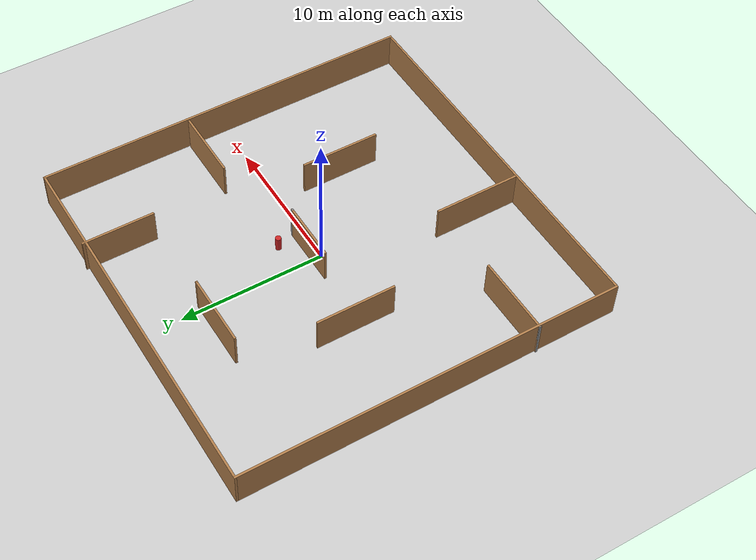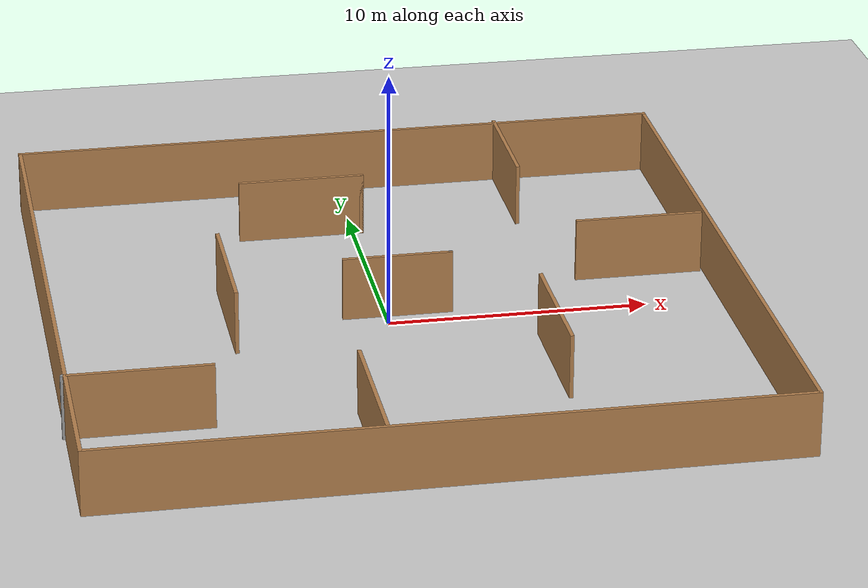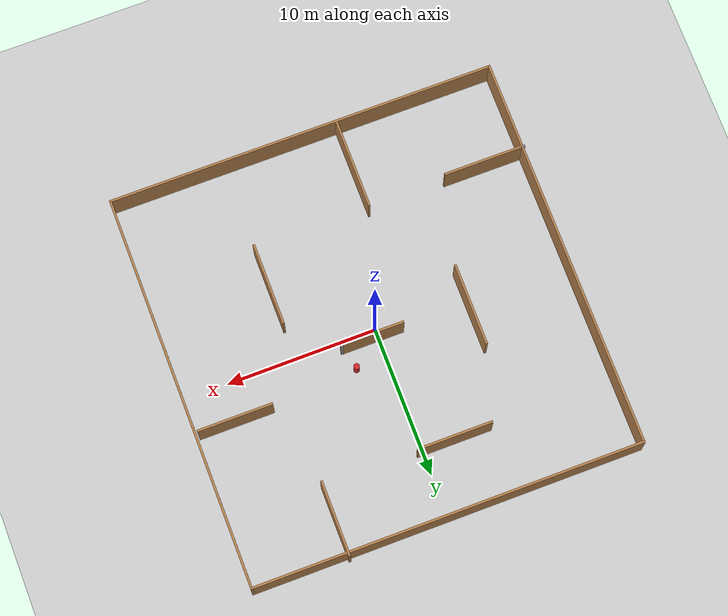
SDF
<?xml version="1.0"?>
<sdf version="1.6">
  <world name="default">

    <include>
      <uri>model://ground_plane</uri>
    </include>

    <include>
      <uri>model://sun</uri>
    </include>

    <scene>
      <shadows>false</shadows>
    </scene>

    <gui fullscreen='0'>
      <camera name='user_camera'>
        <pose frame=''>0.319654 -0.235002 9.29441 0 1.5138 0.009599</pose>
        <view_controller>orbit</view_controller>
        <projection_type>perspective</projection_type>
      </camera>
    </gui>

    <physics type="ode">
      <real_time_update_rate>1000.0</real_time_update_rate>
      <max_step_size>0.001</max_step_size>
      <real_time_factor>1</real_time_factor>
      <ode>
        <solver>
          <type>quick</type>
          <iters>150</iters>
          <precon_iters>0</precon_iters>
          <sor>1.400000</sor>
          <use_dynamic_moi_rescaling>1</use_dynamic_moi_rescaling>
        </solver>
        <constraints>
          <cfm>0.00001</cfm>
          <erp>0.2</erp>
          <contact_max_correcting_vel>2000.000000</contact_max_correcting_vel>
          <contact_surface_layer>0.01000</contact_surface_layer>
        </constraints>
      </ode>
    </physics>

    <include>
	# Maze_1 Model
      <uri>model://Maze_1</uri>
      <pose>0 0 0 0 0 0</pose>
    </include>

	# Cylinder As Obstacle
    <model name='target_cylinder'>
      <pose>2.0 2.0 0.5 0 0 0</pose> <!-- x y z roll pitch yaw -->
      <link name='link'>
        <visual name='visual'>
          <geometry>
            <cylinder>
              <radius>0.2</radius>
              <length>1.0</length>
            </cylinder>
          </geometry>
          <material>
            <script>
              <uri>file://media/materials/scripts/gazebo.material</uri>
              <name>Gazebo/Red</name>
            </script>
          </material>
        </visual>
        <collision name='collision'>
          <geometry>
            <cylinder>
              <radius>0.2</radius>
              <length>1.0</length>
            </cylinder>
          </geometry>
        </collision>
      </link>
    </model>

  </world>
</sdf>

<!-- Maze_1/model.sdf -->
<sdf version='1.7'>
  <model name='Maze_1'>
    <pose>0.039833 0.061932 0 0 -0 0</pose>
    <link name='Wall_16'>
      <collision name='Wall_16_Collision'>
        <geometry>
          <box>
            <size>26.5 0.15 2.5</size>
          </box>
        </geometry>
        <pose>0 0 1.25 0 -0 0</pose>
      </collision>
      <visual name='Wall_16_Visual'>
        <pose>0 0 1.25 0 -0 0</pose>
        <geometry>
          <box>
            <size>26.5 0.15 2.5</size>
          </box>
        </geometry>
        <material>
          <script>
            <uri>file://media/materials/scripts/gazebo.material</uri>
            <name>Gazebo/Wood</name>
          </script>
          <ambient>1 1 1 1</ambient>
        </material>
        <meta>
          <layer>0</layer>
        </meta>
      </visual>
      <pose>-12.8715 -0.092371 0 0 -0 -1.5708</pose>
    </link>
    <link name='Wall_17'>
      <collision name='Wall_17_Collision'>
        <geometry>
          <box>
            <size>26 0.15 2.5</size>
          </box>
        </geometry>
        <pose>0 0 1.25 0 -0 0</pose>
      </collision>
      <visual name='Wall_17_Visual'>
        <pose>0 0 1.25 0 -0 0</pose>
        <geometry>
          <box>
            <size>26 0.15 2.5</size>
          </box>
        </geometry>
        <material>
          <script>
            <uri>file://media/materials/scripts/gazebo.material</uri>
            <name>Gazebo/Wood</name>
          </script>
          <ambient>1 1 1 1</ambient>
        </material>
        <meta>
          <layer>0</layer>
        </meta>
      </visual>
      <pose>0.053502 -13.2674 0 0 -0 0</pose>
    </link>
    <link name='Wall_18'>
      <collision name='Wall_18_Collision'>
        <geometry>
          <box>
            <size>26.5 0.15 2.5</size>
          </box>
        </geometry>
        <pose>0 0 1.25 0 -0 0</pose>
      </collision>
      <visual name='Wall_18_Visual'>
        <pose>0 0 1.25 0 -0 0</pose>
        <geometry>
          <box>
            <size>26.5 0.15 2.5</size>
          </box>
        </geometry>
        <material>
          <script>
            <uri>file://media/materials/scripts/gazebo.material</uri>
            <name>Gazebo/Wood</name>
          </script>
          <ambient>1 1 1 1</ambient>
        </material>
        <meta>
          <layer>0</layer>
        </meta>
      </visual>
      <pose>12.9785 -0.092371 0 0 -0 1.5708</pose>
    </link>
    <link name='Wall_19'>
      <collision name='Wall_19_Collision'>
        <geometry>
          <box>
            <size>26 0.15 2.5</size>
          </box>
        </geometry>
        <pose>0 0 1.25 0 -0 0</pose>
      </collision>
      <visual name='Wall_19_Visual'>
        <pose>0 0 1.25 0 -0 0</pose>
        <geometry>
          <box>
            <size>26 0.15 2.5</size>
          </box>
        </geometry>
        <material>
          <script>
            <uri>file://media/materials/scripts/gazebo.material</uri>
            <name>Gazebo/Wood</name>
          </script>
          <ambient>1 1 1 1</ambient>
        </material>
        <meta>
          <layer>0</layer>
        </meta>
      </visual>
      <pose>0.053502 13.0826 0 0 -0 3.14159</pose>
    </link>
    <link name='Wall_21'>
      <collision name='Wall_21_Collision'>
        <geometry>
          <box>
            <size>0.16 0.15 2.5</size>
          </box>
        </geometry>
        <pose>0 0 1.25 0 -0 0</pose>
      </collision>
      <visual name='Wall_21_Visual'>
        <pose>0 0 1.25 0 -0 0</pose>
        <geometry>
          <box>
            <size>0.16 0.15 2.5</size>
          </box>
        </geometry>
        <material>
          <script>
            <uri>file://media/materials/scripts/gazebo.material</uri>
            <name>Gazebo/Wood</name>
          </script>
          <ambient>1 1 1 1</ambient>
        </material>
        <meta>
          <layer>0</layer>
        </meta>
      </visual>
      <pose>0.34862 8.58842 0 0 -0 0</pose>
    </link>
    <link name='Wall_22'>
      <collision name='Wall_22_Collision'>
        <geometry>
          <box>
            <size>5 0.15 2.5</size>
          </box>
        </geometry>
        <pose>0 0 1.25 0 -0 0</pose>
      </collision>
      <visual name='Wall_22_Visual'>
        <pose>0 0 1.25 0 -0 0</pose>
        <geometry>
          <box>
            <size>5 0.15 2.5</size>
          </box>
        </geometry>
        <material>
          <script>
            <uri>file://media/materials/scripts/gazebo.material</uri>
            <name>Gazebo/Wood</name>
          </script>
          <ambient>1 1 1 1</ambient>
        </material>
        <meta>
          <layer>0</layer>
        </meta>
      </visual>
      <pose>-2.07138 8.58842 0 0 -0 3.14159</pose>
    </link>
    <link name='Wall_24'>
      <collision name='Wall_24_Collision'>
        <geometry>
          <box>
            <size>0.16 0.15 2.5</size>
          </box>
        </geometry>
        <pose>0 0 1.25 0 -0 0</pose>
      </collision>
      <visual name='Wall_24_Visual'>
        <pose>0 0 1.25 0 -0 0</pose>
        <geometry>
          <box>
            <size>0.16 0.15 2.5</size>
          </box>
        </geometry>
        <material>
          <script>
            <uri>file://media/materials/scripts/gazebo.material</uri>
            <name>Gazebo/Grey</name>
          </script>
          <ambient>1 1 1 1</ambient>
        </material>
        <meta>
          <layer>0</layer>
        </meta>
      </visual>
      <pose>-12.9735 -7.46233 0 0 -0 0</pose>
    </link>
    <link name='Wall_25'>
      <collision name='Wall_25_Collision'>
        <geometry>
          <box>
            <size>5.5 0.15 2.5</size>
          </box>
        </geometry>
        <pose>0 0 1.25 0 -0 0</pose>
      </collision>
      <visual name='Wall_25_Visual'>
        <pose>0 0 1.25 0 -0 0</pose>
        <geometry>
          <box>
            <size>5.5 0.15 2.5</size>
          </box>
        </geometry>
        <material>
          <script>
            <uri>file://media/materials/scripts/gazebo.material</uri>
            <name>Gazebo/Wood</name>
          </script>
          <ambient>1 1 1 1</ambient>
        </material>
        <meta>
          <layer>0</layer>
        </meta>
      </visual>
      <pose>-10.2935 -7.46233 0 0 -0 0</pose>
    </link>
    <link name='Wall_27'>
      <collision name='Wall_27_Collision'>
        <geometry>
          <box>
            <size>6 0.15 2.5</size>
          </box>
        </geometry>
        <pose>0 0 1.25 0 -0 0</pose>
      </collision>
      <visual name='Wall_27_Visual'>
        <pose>0 0 1.25 0 -0 0</pose>
        <geometry>
          <box>
            <size>6 0.15 2.5</size>
          </box>
        </geometry>
        <material>
          <script>
            <uri>file://media/materials/scripts/gazebo.material</uri>
            <name>Gazebo/Wood</name>
          </script>
          <ambient>1 1 1 1</ambient>
        </material>
        <meta>
          <layer>0</layer>
        </meta>
      </visual>
      <pose>-2.3315 -10.2086 0 0 -0 1.5708</pose>
    </link>
    <link name='Wall_29'>
      <collision name='Wall_29_Collision'>
        <geometry>
          <box>
            <size>5.5 0.15 2.5</size>
          </box>
        </geometry>
        <pose>0 0 1.25 0 -0 0</pose>
      </collision>
      <visual name='Wall_29_Visual'>
        <pose>0 0 1.25 0 -0 0</pose>
        <geometry>
          <box>
            <size>5.5 0.15 2.5</size>
          </box>
        </geometry>
        <material>
          <script>
            <uri>file://media/materials/scripts/gazebo.material</uri>
            <name>Gazebo/Wood</name>
          </script>
          <ambient>1 1 1 1</ambient>
        </material>
        <meta>
          <layer>0</layer>
        </meta>
      </visual>
      <pose>-6.02318 1.09819 0 0 -0 -1.5708</pose>
    </link>
    <link name='Wall_31'>
      <collision name='Wall_31_Collision'>
        <geometry>
          <box>
            <size>0.16 0.15 2.5</size>
          </box>
        </geometry>
        <pose>0 0 1.25 0 -0 0</pose>
      </collision>
      <visual name='Wall_31_Visual'>
        <pose>0 0 1.25 0 -0 0</pose>
        <geometry>
          <box>
            <size>0.16 0.15 2.5</size>
          </box>
        </geometry>
        <material>
          <script>
            <uri>file://media/materials/scripts/gazebo.material</uri>
            <name>Gazebo/Grey</name>
          </script>
          <ambient>1 1 1 1</ambient>
        </material>
        <meta>
          <layer>0</layer>
        </meta>
      </visual>
      <pose>2.48872 0.670048 0 0 -0 0</pose>
    </link>
    <link name='Wall_32'>
      <collision name='Wall_32_Collision'>
        <geometry>
          <box>
            <size>4.25 0.15 2.5</size>
          </box>
        </geometry>
        <pose>0 0 1.25 0 -0 0</pose>
      </collision>
      <visual name='Wall_32_Visual'>
        <pose>0 0 1.25 0 -0 0</pose>
        <geometry>
          <box>
            <size>4.25 0.15 2.5</size>
          </box>
        </geometry>
        <material>
          <script>
            <uri>file://media/materials/scripts/gazebo.material</uri>
            <name>Gazebo/Wood</name>
          </script>
          <ambient>1 1 1 1</ambient>
        </material>
        <meta>
          <layer>0</layer>
        </meta>
      </visual>
      <pose>0.44372 0.670048 0 0 -0 3.14159</pose>
    </link>
    <link name='Wall_34'>
      <collision name='Wall_34_Collision'>
        <geometry>
          <box>
            <size>5 0.15 2.5</size>
          </box>
        </geometry>
        <pose>0 0 1.25 0 -0 0</pose>
      </collision>
      <visual name='Wall_34_Visual'>
        <pose>0 0 1.25 0 -0 0</pose>
        <geometry>
          <box>
            <size>5 0.15 2.5</size>
          </box>
        </geometry>
        <material>
          <script>
            <uri>file://media/materials/scripts/gazebo.material</uri>
            <name>Gazebo/Wood</name>
          </script>
          <ambient>1 1 1 1</ambient>
        </material>
        <meta>
          <layer>0</layer>
        </meta>
      </visual>
      <pose>10.3125 2.70314 0 0 -0 0</pose>
    </link>
    <link name='Wall_36'>
      <collision name='Wall_36_Collision'>
        <geometry>
          <box>
            <size>5.5 0.15 2.5</size>
          </box>
        </geometry>
        <pose>0 0 1.25 0 -0 0</pose>
      </collision>
      <visual name='Wall_36_Visual'>
        <pose>0 0 1.25 0 -0 0</pose>
        <geometry>
          <box>
            <size>5.5 0.15 2.5</size>
          </box>
        </geometry>
        <material>
          <script>
            <uri>file://media/materials/scripts/gazebo.material</uri>
            <name>Gazebo/Wood</name>
          </script>
          <ambient>1 1 1 1</ambient>
        </material>
        <meta>
          <layer>0</layer>
        </meta>
      </visual>
      <pose>5.42636 -4.62657 0 0 -0 -1.5708</pose>
    </link>
    <link name='Wall_41'>
      <collision name='Wall_41_Collision'>
        <geometry>
          <box>
            <size>5 0.15 2.5</size>
          </box>
        </geometry>
        <pose>0 0 1.25 0 -0 0</pose>
      </collision>
      <visual name='Wall_41_Visual'>
        <pose>0 0 1.25 0 -0 0</pose>
        <geometry>
          <box>
            <size>5 0.15 2.5</size>
          </box>
        </geometry>
        <material>
          <script>
            <uri>file://media/materials/scripts/gazebo.material</uri>
            <name>Gazebo/Wood</name>
          </script>
          <ambient>1 1 1 1</ambient>
        </material>
        <meta>
          <layer>0</layer>
        </meta>
      </visual>
      <pose>6.68216 10.8424 0 0 -0 -1.5708</pose>
    </link>
    <static>1</static>
  </model>
</sdf>
